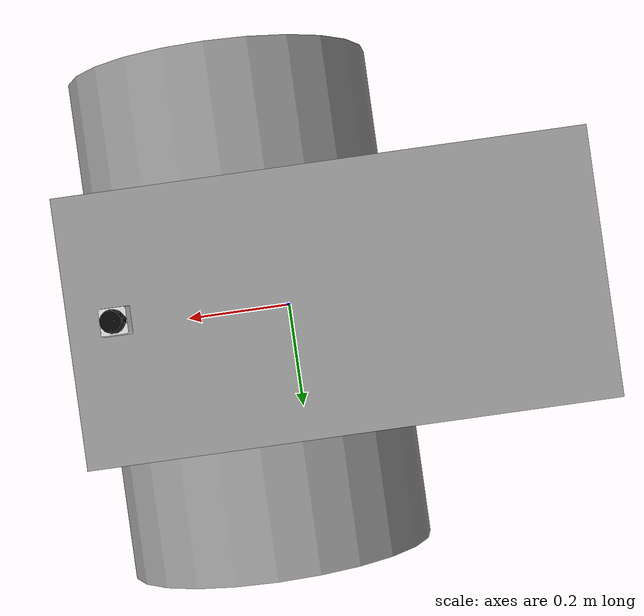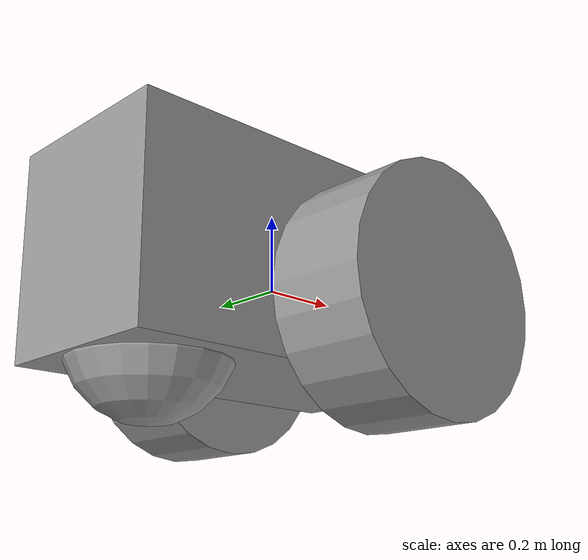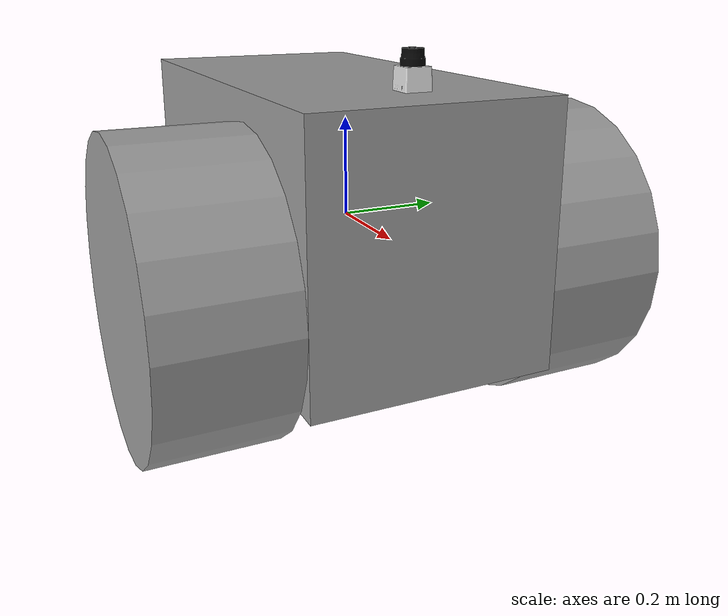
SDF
<?xml version='1.0'?>
<sdf version='1.6'>
	<model name='vehicle_lidar'>
		<link name='link_0'>
			<pose frame=''>-0.091777 0.002441 0.019551 0 -0 0</pose>
			<inertial>
				<mass>0.234374</mass>
				<inertia>
					<ixx>0.00967632</ixx>
					<ixy>0</ixy>
					<ixz>0</ixz>
					<iyy>0.0227053</iyy>
					<iyz>0</iyz>
					<izz>0.022084</izz>
				</inertia>
				<pose frame=''>0 0 0 0 -0 0</pose>
			</inertial>
			<self_collide>0</self_collide>
			<kinematic>0</kinematic>
			<visual name='visual'>
				<pose frame=''>0 0 0 0 -0 0</pose>
				<geometry>
					<box>
						<size>0.948099 0.481462 0.513452</size>
					</box>
				</geometry>
				<material>
					<lighting>1</lighting>
					<script>
						<uri>file://media/materials/scripts/gazebo.material</uri>
						<name>Gazebo/Grey</name>
					</script>
					<ambient>0.3 0.3 0.3 1</ambient>
					<diffuse>0.7 0.7 0.7 1</diffuse>
					<specular>0.01 0.01 0.01 1</specular>
					<emissive>0 0 0 1</emissive>
					<shader type='vertex'>
						<normal_map>__default__</normal_map>
					</shader>
				</material>
				<cast_shadows>1</cast_shadows>
				<transparency>0</transparency>
			</visual>
			<collision name='collision'>
				<laser_retro>0</laser_retro>
				<max_contacts>10</max_contacts>
				<pose frame=''>0 0 0 0 -0 0</pose>
				<geometry>
					<box>
						<size>0.948099 0.481462 0.513452</size>
					</box>
				</geometry>
				<surface>
					<friction>
						<ode>
							<mu>1</mu>
							<mu2>1</mu2>
							<fdir1>0 0 0</fdir1>
							<slip1>0</slip1>
							<slip2>0</slip2>
						</ode>
						<torsional>
							<coefficient>1</coefficient>
							<patch_radius>0</patch_radius>
							<surface_radius>0</surface_radius>
							<use_patch_radius>1</use_patch_radius>
							<ode>
								<slip>0</slip>
							</ode>
						</torsional>
					</friction>
					<bounce>
						<restitution_coefficient>0</restitution_coefficient>
						<threshold>1e+06</threshold>
					</bounce>
					<contact>
						<collide_without_contact>0</collide_without_contact>
						<collide_without_contact_bitmask>1</collide_without_contact_bitmask>
						<collide_bitmask>1</collide_bitmask>
						<ode>
							<soft_cfm>0</soft_cfm>
							<soft_erp>0.2</soft_erp>
							<kp>1e+13</kp>
							<kd>1</kd>
							<max_vel>0.01</max_vel>
							<min_depth>0</min_depth>
						</ode>
						<bullet>
							<split_impulse>1</split_impulse>
							<split_impulse_penetration_threshold>-0.01</split_impulse_penetration_threshold>
							<soft_cfm>0</soft_cfm>
							<soft_erp>0.2</soft_erp>
							<kp>1e+13</kp>
							<kd>1</kd>
						</bullet>
					</contact>
				</surface>
			</collision>
		</link>
		<link name='link_1'>
			<pose frame=''>0.082272 -0.363319 -0.080449 1.5707 -0 0</pose>
			<inertial>
				<mass>1</mass>
				<inertia>
					<ixx>0.145833</ixx>
					<ixy>0</ixy>
					<ixz>0</ixz>
					<iyy>0.145833</iyy>
					<iyz>0</iyz>
					<izz>0.125</izz>
				</inertia>
				<pose frame=''>0 0 0 0 -0 0</pose>
			</inertial>
			<self_collide>0</self_collide>
			<kinematic>0</kinematic>
			<visual name='visual'>
				<pose frame=''>0 0 0 0 -0 0</pose>
				<geometry>
					<cylinder>
						<radius>0.3</radius>
						<length>0.25</length>
					</cylinder>
				</geometry>
				<material>
					<lighting>1</lighting>
					<script>
						<uri>file://media/materials/scripts/gazebo.material</uri>
						<name>Gazebo/Grey</name>
					</script>
					<ambient>0.3 0.3 0.3 1</ambient>
					<diffuse>0.7 0.7 0.7 1</diffuse>
					<specular>0.01 0.01 0.01 1</specular>
					<emissive>0 0 0 1</emissive>
					<shader type='vertex'>
						<normal_map>__default__</normal_map>
					</shader>
				</material>
				<cast_shadows>1</cast_shadows>
				<transparency>0</transparency>
			</visual>
			<collision name='collision'>
				<laser_retro>0</laser_retro>
				<max_contacts>10</max_contacts>
				<pose frame=''>0 0 0 0 -0 0</pose>
				<geometry>
					<cylinder>
						<radius>0.3</radius>
						<length>0.25</length>
					</cylinder>
				</geometry>
				<surface>
					<friction>
						<ode>
							<mu>1</mu>
							<mu2>1</mu2>
							<fdir1>0 0 0</fdir1>
							<slip1>0</slip1>
							<slip2>0</slip2>
						</ode>
						<torsional>
							<coefficient>1</coefficient>
							<patch_radius>0</patch_radius>
							<surface_radius>0</surface_radius>
							<use_patch_radius>1</use_patch_radius>
							<ode>
								<slip>0</slip>
							</ode>
						</torsional>
					</friction>
					<bounce>
						<restitution_coefficient>0</restitution_coefficient>
						<threshold>1e+06</threshold>
					</bounce>
					<contact>
						<collide_without_contact>0</collide_without_contact>
						<collide_without_contact_bitmask>1</collide_without_contact_bitmask>
						<collide_bitmask>1</collide_bitmask>
						<ode>
							<soft_cfm>0</soft_cfm>
							<soft_erp>0.2</soft_erp>
							<kp>1e+13</kp>
							<kd>1</kd>
							<max_vel>0.01</max_vel>
							<min_depth>0</min_depth>
						</ode>
						<bullet>
							<split_impulse>1</split_impulse>
							<split_impulse_penetration_threshold>-0.01</split_impulse_penetration_threshold>
							<soft_cfm>0</soft_cfm>
							<soft_erp>0.2</soft_erp>
							<kp>1e+13</kp>
							<kd>1</kd>
						</bullet>
					</contact>
				</surface>
			</collision>
		</link>
		<link name='link_1_clone'>
			<pose frame=''>0.082272 0.368201 -0.080449 1.5707 -0 0</pose>
			<inertial>
				<mass>1</mass>
				<inertia>
					<ixx>0.145833</ixx>
					<ixy>0</ixy>
					<ixz>0</ixz>
					<iyy>0.145833</iyy>
					<iyz>0</iyz>
					<izz>0.125</izz>
				</inertia>
				<pose frame=''>0 0 0 0 -0 0</pose>
			</inertial>
			<self_collide>0</self_collide>
			<kinematic>0</kinematic>
			<visual name='visual'>
				<pose frame=''>0 0 0 0 -0 0</pose>
				<geometry>
					<cylinder>
						<radius>0.3</radius>
						<length>0.25</length>
					</cylinder>
				</geometry>
				<material>
					<lighting>1</lighting>
					<script>
						<uri>file://media/materials/scripts/gazebo.material</uri>
						<name>Gazebo/Grey</name>
					</script>
					<ambient>0.3 0.3 0.3 1</ambient>
					<diffuse>0.7 0.7 0.7 1</diffuse>
					<specular>0.01 0.01 0.01 1</specular>
					<emissive>0 0 0 1</emissive>
					<shader type='vertex'>
						<normal_map>__default__</normal_map>
					</shader>
				</material>
				<cast_shadows>1</cast_shadows>
				<transparency>0</transparency>
			</visual>
			<collision name='collision'>
				<laser_retro>0</laser_retro>
				<max_contacts>10</max_contacts>
				<pose frame=''>0 0 0 0 -0 0</pose>
				<geometry>
					<cylinder>
						<radius>0.3</radius>
						<length>0.25</length>
					</cylinder>
				</geometry>
				<surface>
					<friction>
						<ode>
							<mu>1</mu>
							<mu2>1</mu2>
							<fdir1>0 0 0</fdir1>
							<slip1>0</slip1>
							<slip2>0</slip2>
						</ode>
						<torsional>
							<coefficient>1</coefficient>
							<patch_radius>0</patch_radius>
							<surface_radius>0</surface_radius>
							<use_patch_radius>1</use_patch_radius>
							<ode>
								<slip>0</slip>
							</ode>
						</torsional>
					</friction>
					<bounce>
						<restitution_coefficient>0</restitution_coefficient>
						<threshold>1e+06</threshold>
					</bounce>
					<contact>
						<collide_without_contact>0</collide_without_contact>
						<collide_without_contact_bitmask>1</collide_without_contact_bitmask>
						<collide_bitmask>1</collide_bitmask>
						<ode>
							<soft_cfm>0</soft_cfm>
							<soft_erp>0.2</soft_erp>
							<kp>1e+13</kp>
							<kd>1</kd>
							<max_vel>0.01</max_vel>
							<min_depth>0</min_depth>
						</ode>
						<bullet>
							<split_impulse>1</split_impulse>
							<split_impulse_penetration_threshold>-0.01</split_impulse_penetration_threshold>
							<soft_cfm>0</soft_cfm>
							<soft_erp>0.2</soft_erp>
							<kp>1e+13</kp>
							<kd>1</kd>
						</bullet>
					</contact>
				</surface>
			</collision>
		</link>
		<link name='link_2'>
			<pose frame=''>-0.365826 0.002441 -0.180449 0 -0 0</pose>
			<inertial>
				<mass>1</mass>
				<inertia>
					<ixx>0.1</ixx>
					<ixy>0</ixy>
					<ixz>0</ixz>
					<iyy>0.1</iyy>
					<iyz>0</iyz>
					<izz>0.1</izz>
				</inertia>
				<pose frame=''>0 0 0 0 -0 0</pose>
			</inertial>
			<self_collide>0</self_collide>
			<kinematic>0</kinematic>
			<visual name='visual'>
				<pose frame=''>0 0 0 0 -0 0</pose>
				<geometry>
					<sphere>
						<radius>0.2</radius>
					</sphere>
				</geometry>
				<material>
					<lighting>1</lighting>
					<script>
						<uri>file://media/materials/scripts/gazebo.material</uri>
						<name>Gazebo/Grey</name>
					</script>
					<ambient>0.3 0.3 0.3 1</ambient>
					<diffuse>0.7 0.7 0.7 1</diffuse>
					<specular>0.01 0.01 0.01 1</specular>
					<emissive>0 0 0 1</emissive>
					<shader type='vertex'>
						<normal_map>__default__</normal_map>
					</shader>
				</material>
				<cast_shadows>1</cast_shadows>
				<transparency>0</transparency>
			</visual>
			<collision name='collision'>
				<laser_retro>0</laser_retro>
				<max_contacts>10</max_contacts>
				<pose frame=''>0 0 0 0 -0 0</pose>
				<geometry>
					<sphere>
						<radius>0.2</radius>
					</sphere>
				</geometry>
				<surface>
					<friction>
						<ode>
							<mu>1</mu>
							<mu2>1</mu2>
							<fdir1>0 0 0</fdir1>
							<slip1>0</slip1>
							<slip2>0</slip2>
						</ode>
						<torsional>
							<coefficient>1</coefficient>
							<patch_radius>0</patch_radius>
							<surface_radius>0</surface_radius>
							<use_patch_radius>1</use_patch_radius>
							<ode>
								<slip>0</slip>
							</ode>
						</torsional>
					</friction>
					<bounce>
						<restitution_coefficient>0</restitution_coefficient>
						<threshold>1e+06</threshold>
					</bounce>
					<contact>
						<collide_without_contact>0</collide_without_contact>
						<collide_without_contact_bitmask>1</collide_without_contact_bitmask>
						<collide_bitmask>1</collide_bitmask>
						<ode>
							<soft_cfm>0</soft_cfm>
							<soft_erp>0.2</soft_erp>
							<kp>1e+13</kp>
							<kd>1</kd>
							<max_vel>0.01</max_vel>
							<min_depth>0</min_depth>
						</ode>
						<bullet>
							<split_impulse>1</split_impulse>
							<split_impulse_penetration_threshold>-0.01</split_impulse_penetration_threshold>
							<soft_cfm>0</soft_cfm>
							<soft_erp>0.2</soft_erp>
							<kp>1e+13</kp>
							<kd>1</kd>
						</bullet>
					</contact>
				</surface>
			</collision>
		</link>
		<model name='hokuyo'>
			<link name='link'>
				<gravity>0</gravity>
				<inertial>
					<mass>0.0001</mass>
					<inertia>
						<ixx>1</ixx>
						<ixy>0</ixy>
						<ixz>0</ixz>
						<iyy>1</iyy>
						<iyz>0</iyz>
						<izz>1</izz>
					</inertia>
				</inertial>
				<visual name='visual'>
					<geometry>
						<mesh>
							<uri>model://hokuyo/meshes/hokuyo.dae</uri>
						</mesh>
					</geometry>
				</visual>
				<sensor name='laser' type='ray'>
					<pose frame=''>0.01 0 0.03 0 -0 0</pose>
					<ray>
						<scan>
							<horizontal>
								<samples>360</samples>
								<resolution>1</resolution>
								<min_angle>-3.12414</min_angle>
								<max_angle>3.12414</max_angle>
							</horizontal>
							<vertical>
								<samples>1</samples>
								<min_angle>0</min_angle>
								<max_angle>0</max_angle>
							</vertical>
						</scan>
						<range>
							<min>0.08</min>
							<max>10</max>
							<resolution>0.01</resolution>
						</range>
					</ray>
					<plugin name='gazebo_ros_head_hokuyo_controller' filename='libgazebo_ros_laser.so'>
						<topicName>/rrbot/laser/scan</topicName>
						<frameName>hokuyo_link</frameName>
					</plugin>
					<always_on>1</always_on>
					<update_rate>30</update_rate>
					<visualize>1</visualize>
				</sensor>
				<self_collide>0</self_collide>
				<kinematic>0</kinematic>
			</link>
			<pose frame=''>0.293058 -0.009765 0.321797 0 -0 0</pose>
		</model>
		<joint name='link_0_JOINT_0' type='revolute'>
			<parent>link_0</parent>
			<child>link_1</child>
			<pose frame=''>0 0 0 0 -0 0</pose>
			<axis>
				<xyz>0 0 -1</xyz>
				<use_parent_model_frame>0</use_parent_model_frame>
				<limit>
					<lower>-1.79769e+308</lower>
					<upper>1.79769e+308</upper>
					<effort>-1</effort>
					<velocity>-1</velocity>
				</limit>
				<dynamics>
					<spring_reference>0</spring_reference>
					<spring_stiffness>0</spring_stiffness>
					<damping>0</damping>
					<friction>0</friction>
				</dynamics>
			</axis>
			<physics>
				<ode>
					<limit>
						<cfm>0</cfm>
						<erp>0.2</erp>
					</limit>
					<suspension>
						<cfm>0</cfm>
						<erp>0.2</erp>
					</suspension>
				</ode>
			</physics>
		</joint>
		<joint name='link_0_JOINT_1' type='revolute'>
			<parent>link_0</parent>
			<child>link_1_clone</child>
			<pose frame=''>0 0 0 0 -0 0</pose>
			<axis>
				<xyz>0 0 1</xyz>
				<use_parent_model_frame>0</use_parent_model_frame>
				<limit>
					<lower>-1.79769e+308</lower>
					<upper>1.79769e+308</upper>
					<effort>-1</effort>
					<velocity>-1</velocity>
				</limit>
				<dynamics>
					<spring_reference>0</spring_reference>
					<spring_stiffness>0</spring_stiffness>
					<damping>0</damping>
					<friction>0</friction>
				</dynamics>
			</axis>
			<physics>
				<ode>
					<limit>
						<cfm>0</cfm>
						<erp>0.2</erp>
					</limit>
					<suspension>
						<cfm>0</cfm>
						<erp>0.2</erp>
					</suspension>
				</ode>
			</physics>
		</joint>
		<joint name='link_0_JOINT_2' type='ball'>
			<parent>link_0</parent>
			<child>link_2</child>
			<pose frame=''>0 0 0 0 -0 0</pose>
			<physics>
				<ode>
					<limit>
						<cfm>0</cfm>
						<erp>0.2</erp>
					</limit>
					<suspension>
						<cfm>0</cfm>
						<erp>0.2</erp>
					</suspension>
				</ode>
			</physics>
		</joint>
		<joint name='link_0_JOINT_3' type='fixed'>
			<parent>link_0</parent>
			<child>hokuyo::link</child>
			<pose frame=''>0 0 0 0 -0 0</pose>
			<physics>
				<ode>
					<limit>
						<cfm>0</cfm>
						<erp>0.2</erp>
					</limit>
					<suspension>
						<cfm>0</cfm>
						<erp>0.2</erp>
					</suspension>
				</ode>
			</physics>
		</joint>
		<static>0</static>
		<allow_auto_disable>1</allow_auto_disable>

		<plugin name="differential_drive_controller" filename="libgazebo_ros_diff_drive.so">
			<alwaysOn>true</alwaysOn>
			<legacyMode>true</legacyMode>
			<updateRate>30</updateRate>
			<leftJoint>link_0_JOINT_0</leftJoint>
			<rightJoint>link_0_JOINT_1</rightJoint>
			<wheelSeparation>0.73146</wheelSeparation>
			<wheelDiameter>0.6</wheelDiameter>
			<torque>20</torque>
			<commandTopic>cmd_vel</commandTopic>
			<odometryTopic>odom</odometryTopic>
			<odometryFrame>odom</odometryFrame>
			<robotBaseFrame>link_0</robotBaseFrame>
		</plugin>
	</model>
</sdf>
